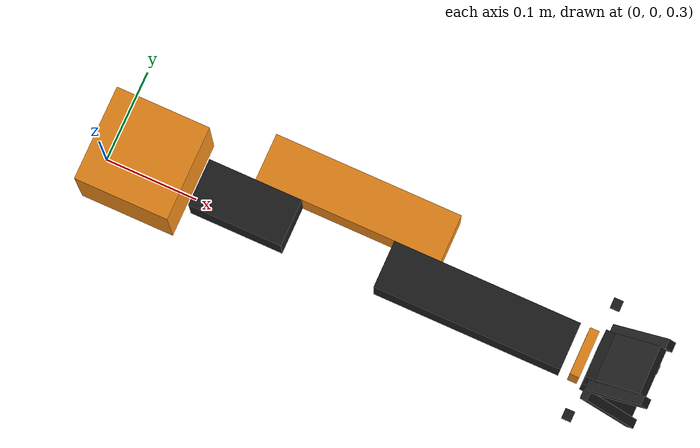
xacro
<?xml version="1.0"?>

<robot name="my_robo" xmlns:xacro="http://www.ros.org/wiki/xacro">

  <xacro:property name="PI" value="3.1415926535"/>
  <xacro:property name="mass1" value="0.05"/>
  <xacro:property name="mass2" value="0.05"/>
  <xacro:property name="mass3" value="0.05"/>
  <xacro:property name="mass4" value="0.02"/>
  <xacro:property name="mass5" value="0.02"/>

  <xacro:property name="width1" value="0.1"/>
  <xacro:property name="width2" value="0.1"/>
  <xacro:property name="width3" value="0.2"/>
  <xacro:property name="width4" value="0.2"/>
  <xacro:property name="width5" value="0.01"/>
  <xacro:property name="width6" value="0.01"/>
  <xacro:property name="width7" value="0.01"/>

  <xacro:property name="ha" value="0.08"/>

  <xacro:property name="size_cam" value="0.01"/>
  <xacro:property name="offset_cam" value="0.03"/>

  <xacro:property name="low" value="-1.57"/>
  <xacro:property name="up" value="1.57"/>
  <xacro:property name="eff" value="10.0"/>
  <xacro:property name="vel" value="5.0"/>

  <xacro:property name="sizeX" value="0.05"/>
  <xacro:property name="sizeY" value="0.05"/>
  <xacro:property name="sizeXg" value="0.05"/>
  <xacro:property name="sizeYg" value="0.05"/>

  <xacro:property name="offsetX" value="0.01"/>
  <xacro:property name="offsetY" value="0.05"/>

  <xacro:include filename="$(find my_robo_d)/urdf/my_robo.gazebo"/> i
  <xacro:include filename="$(find my_robo_d)/urdf/materials.xacro" />

  <link name="world"/>
  <joint name="fixed" type="fixed">
    <origin xyz="0 0 0.4" rpy="0 0 0"/>
    <parent link="world"/>
    <child link="link1"/>
  </joint>

  <link name="link1">
    <collision>
      <origin xyz="${width1/2} 0 0" rpy="0 0 0"/>
      <geometry>
        <box size="${width1/2} ${sizeX/2} ${sizeY/2}"/>
      </geometry>
    </collision>
    <visual>
      <origin xyz="${width1/2} 0 0" rpy="0 0 0"/>
      <geometry>
        <box size="${width1} ${sizeX*2} ${sizeY*2}"/>
      </geometry>
      <material name="orange"/>
    </visual>

    <inertial>
      <origin xyz="${width1/2} 0 0" rpy="0 0 0"/>
      <mass value="${mass1}"/>
      <inertia
        ixx="${mass1 / 12.0 * (width1*width1 + sizeY*sizeY)}" ixy="0.0" ixz="0.0"
        iyy="${mass1 / 12.0 * (sizeY*sizeY + sizeX * sizeX)}" iyz="0.0"
        izz="${mass1 / 12.0 * (sizeX * sizeX + width1 * width1)}" />
    </inertial>
  </link>

  <joint name="joint1" type="revolute">
    <origin xyz="${width1+offsetX} 0 0" rpy="0 0 0"/>
    <parent link="link1"/>
    <child link="link2"/>
    <axis xyz ="1 0 0"/>
    <dynamics damping="0.7"/>
    <limit lower = "${low}" upper = "${up}" effort="${eff}" velocity="${vel}"/>
  </joint>

  <link name="link2">
    <collision>
      <origin xyz="${width2/2} 0 0" rpy="0 0 0"/>
      <geometry>
        <box size="${width2/2} ${sizeX} ${sizeY}"/>
      </geometry>
    </collision>
    <visual>
      <origin xyz="${width2/2} 0 0" rpy="0 0 0"/>
      <geometry>
        <box size="${width2} ${sizeX} ${sizeY}"/>
      </geometry>
      <material name="black"/>
    </visual>

    <inertial>
      <origin xyz="${width2/2} 0 0" rpy="0 0 0"/>
      <mass value="${mass2}"/>
      <inertia
        ixx="${mass2 / 12.0 * (width2*width2 + sizeY*sizeY)}" ixy="0.0" ixz="0.0"
        iyy="${mass2 / 12.0 * (sizeY*sizeY + sizeX * sizeX)}" iyz="0.0"
        izz="${mass2 / 12.0 * (sizeX * sizeX + width2 * width2)}" />
    </inertial>

  </link>

  <joint name="joint2" type="revolute">
    <origin xyz="${width2-offsetY} ${offsetY} 0" rpy="0 0 0"/>
    <parent link="link2"/>
    <child link="link3"/>
    <axis xyz ="0 1 0"/>
    <dynamics damping="0.7"/>
    <limit lower = "${low}" upper = "${up}" effort="${eff}" velocity="${vel}"/>
  </joint>

  <link name="link3">
    <collision>
      <origin xyz="${width3/2} 0 0" rpy="0 0 0"/>
      <geometry>
        <box size="${width3/2} ${sizeX} ${sizeY}"/>
      </geometry>
    </collision>
    <visual>
      <origin xyz="${width3/2} 0 0" rpy="0 0 0"/>
      <geometry>
        <box size="${width3} ${sizeX} ${sizeY}"/>
      </geometry>
      <material name="orange"/>
    </visual>

    <inertial>
      <origin xyz="${width3/2} 0 0" rpy="0 0 0"/>
      <mass value="${mass3}"/>
      <inertia
        ixx="${mass3 / 12.0 * (width3*width3 + sizeY*sizeY)}" ixy="0.0" ixz="0.0"
        iyy="${mass3 / 12.0 * (sizeY*sizeY + sizeX * sizeX)}" iyz="0.0"
        izz="${mass3 / 12.0 * (sizeX * sizeX + width3 * width3)}" />
    </inertial>

  </link>

  <joint name="joint3" type="revolute">
    <origin xyz="${width3-offsetY} ${-offsetY} 0" rpy="0 0 0"/>
    <parent link="link3"/>
    <child link="link4"/>
    <axis xyz ="0 1 0"/>
    <dynamics damping="0.7"/>
    <limit lower = "${low}" upper = "${up}" effort="${eff}" velocity="${vel}"/>
  </joint>

  <link name="link4">
    <collision>
      <origin xyz="${width4/2} 0 0" rpy="0 0 0"/>
      <geometry>
        <box size="${width4/2} ${sizeX} ${sizeY}"/>
      </geometry>
    </collision>
    <visual>
      <origin xyz="${width4/2} 0 0" rpy="0 0 0"/>
      <geometry>
        <box size="${width4} ${sizeX} ${sizeY}"/>
      </geometry>
      <material name="black"/>
    </visual>

    <inertial>
      <origin xyz="${width4/2} 0 0" rpy="0 0 0"/>
      <mass value="${mass4}"/>
      <inertia
        ixx="${mass4 / 12.0 * (width4*width4 + sizeY*sizeY)}" ixy="0.0" ixz="0.0"
        iyy="${mass4 / 12.0 * (sizeY*sizeY + sizeX * sizeX)}" iyz="0.0"
        izz="${mass4 / 12.0 * (sizeX * sizeX + width4 * width4)}" />
    </inertial>

  </link>

  <joint name="joint4" type="revolute">
    <origin xyz="${width4+offsetX} 0 0" rpy="0 0 0"/>
    <parent link="link4"/>
    <child link="link5"/>
    <axis xyz ="1 0 0"/>
    <limit lower = "${low}" upper = "${up}" effort="${eff}" velocity="${vel}"/>
    <dynamics damping="0.7"/>
  </joint>

  <link name="link5">
    <collision>
      <origin xyz="${width5/2} 0 0" rpy="0 0 0"/>
      <geometry>
        <box size="${width5/2} ${sizeX} ${sizeY}"/>
      </geometry>
    </collision>
    <visual>
      <origin xyz="${width5/2} 0 0" rpy="0 0 0"/>
      <geometry>
        <box size="${width5} ${sizeX} ${sizeY}"/>
      </geometry>
      <material name="orange"/>
    </visual>

    <inertial>
      <origin xyz="${width5/2} 0 0" rpy="0 0 0"/>
      <mass value="${mass5}"/>
      <inertia
        ixx="${mass5 / 12.0 * (width5*width5 + sizeY*sizeY)}" ixy="0.0" ixz="0.0"
        iyy="${mass5 / 12.0 * (sizeY*sizeY + sizeX * sizeX)}" iyz="0.0"
        izz="${mass5 / 12.0 * (sizeX * sizeX + width5 * width5)}" />
    </inertial>

  </link>

<!--up_grip-->
  <joint name="joint5" type="revolute">
    <origin xyz="${width5} 0 0" rpy="0 0 0"/>
    <parent link="link5"/>
    <child link="link6"/>
    <limit lower = "${low}" upper = "${up}" effort="${eff}" velocity="${vel}"/>
    <dynamics damping="0.7"/>
    <axis xyz="0 1 0"/>
  </joint>

  <link name="link6">
    <collision>
      <origin xyz="${width6} 0 0.03" rpy="0 0 0"/>
      <geometry>
        <box size="${width6} ${sizeXg/2} ${sizeYg/2}"/>
      </geometry>
    </collision>
    <visual>
      <origin xyz="${width6} 0 0.03" rpy="0 0 0"/>
      <geometry>
        <box size="${width6} ${sizeXg} ${sizeYg}"/>
      </geometry>
      <material name="black"/>
    </visual>

    <inertial>
      <origin xyz="${width6/2} 0 0.03" rpy="0 0 0"/>
      <mass value="${mass5}"/>
      <inertia
        ixx="${mass5 / 12.0 * (width6*width6 + sizeY*sizeY)}" ixy="0.0" ixz="0.0"
        iyy="${mass5 / 12.0 * (sizeY*sizeY + sizeX * sizeX)}" iyz="0.0"
        izz="${mass5 / 12.0 * (sizeX * sizeX + width6 * width6)}" />
    </inertial>

  </link>

<!-- up grip2-->
  <joint name="joint7" type="fixed">
    <origin xyz="${width5} 0 0" rpy="0 0 0"/>
    <parent link="link6"/>
    <child link="link8"/>
  </joint>

  <link name="link8">
    <collision>
      <origin xyz="0.035 0 0.075" rpy="0 -0.75 0"/>
      <geometry>
        <box size="0.06 ${sizeXg} 0.01"/>
      </geometry>
    </collision>
    <visual>
      <origin xyz="0.03 0 0.075" rpy="0 -0.75 0"/>
      <geometry>
        <box size="0.06 ${sizeXg} 0.01"/>
      </geometry>
      <material name="black"/>
    </visual>

    <inertial>
      <origin xyz="${width6/2} 0 0.075" rpy="0 -0.75 0"/>
      <mass value="${mass5}"/>
      <inertia
        ixx="${mass5 / 12.0 * (width6*width6 + sizeY*sizeY)}" ixy="0.0" ixz="0.0"
        iyy="${mass5 / 12.0 * (sizeY*sizeY + sizeX * sizeX)}" iyz="0.0"
        izz="${mass5 / 12.0 * (sizeX * sizeX + width6 * width6)}" />
    </inertial>

  </link>

<!-- up grip3-->
  <joint name="joint9" type="fixed">
    <origin xyz="0 0 0" rpy="0 0 0"/>
    <parent link="link8"/>
    <child link="link10"/>
  </joint>

  <link name="link10">
    <collision>
      <origin xyz="0.035 0.03 0.065" rpy="0 0.75 0"/>
      <geometry>
        <box size="0.01 0.01 ${ha/2}"/>
      </geometry>
    </collision>
    <visual>
      <origin xyz="0.03 0.03 0.065" rpy="0 0.75 0"/>
      <geometry>
        <box size="0.01 0.01 ${ha}"/>
      </geometry>
      <material name="black"/>
    </visual>

    <inertial>
      <origin xyz="0.03 0.03 0.065" rpy="0 0.75 0"/>
      <mass value="${mass5}"/>
      <inertia
        ixx="${mass5 / 12.0 * (width6*width6 + sizeY*sizeY)}" ixy="0.0" ixz="0.0"
        iyy="${mass5 / 12.0 * (sizeY*sizeY + sizeX * sizeX)}" iyz="0.0"
        izz="${mass5 / 12.0 * (sizeX * sizeX + width6 * width6)}" />
    </inertial>

  </link>

<!-- up grip4-->
  <joint name="joint10" type="fixed">
    <origin xyz="0 0 0" rpy="0 0 0"/>
    <parent link="link8"/>
    <child link="link11"/>
  </joint>

  <link name="link11">
    <collision>
      <origin xyz="0.035 -0.03 0.065" rpy="0 0.75 0"/>
      <geometry>
        <box size="0.01 0.01 ${ha/2}"/>
      </geometry>
    </collision>
    <visual>
      <origin xyz="0.03 -0.03 0.065" rpy="0 0.75 0"/>
      <geometry>
        <box size="0.01 0.01 ${ha}"/>
      </geometry>
      <material name="black"/>
    </visual>

    <inertial>
      <origin xyz="0.03 -0.03 0.065" rpy="0 0.75 0"/>
      <mass value="${mass5}"/>
      <inertia
        ixx="${mass5 / 12.0 * (width6*width6 + sizeY*sizeY)}" ixy="0.0" ixz="0.0"
        iyy="${mass5 / 12.0 * (sizeY*sizeY + sizeX * sizeX)}" iyz="0.0"
        izz="${mass5 / 12.0 * (sizeX * sizeX + width6 * width6)}" />
    </inertial>

  </link>

<!--down grip-->
  <joint name="joint6" type="revolute">
    <origin xyz="${width5} 0 0" rpy="0 0 0"/>
    <parent link="link5"/>
    <child link="link7"/>
    <limit lower = "${low}" upper = "${up}" effort="${eff}" velocity="${vel}"/>
    <dynamics damping="0.7"/>
    <axis xyz="0 -1 0"/>
  </joint>

  <link name="link7">
    <collision>
      <origin xyz="${width6} 0 -0.03" rpy="0 0 0"/>
      <geometry>
        <box size="${width6} ${sizeXg/2} ${sizeYg/2}"/>
      </geometry>
    </collision>
    <visual>
      <origin xyz="${width6} 0 -0.03" rpy="0 0 0"/>
      <geometry>
        <box size="${width6} ${sizeXg} ${sizeYg}"/>
      </geometry>
      <material name="black"/>
    </visual>

    <inertial>
      <origin xyz="${width6/2} 0 -0.03" rpy="0 0 0"/>
      <mass value="${mass5}"/>
      <inertia
        ixx="${mass5 / 12.0 * (width6*width6 + sizeY*sizeY)}" ixy="0.0" ixz="0.0"
        iyy="${mass5 / 12.0 * (sizeY*sizeY + sizeX * sizeX)}" iyz="0.0"
        izz="${mass5 / 12.0 * (sizeX * sizeX + width6 * width6)}" />
    </inertial>

  </link>

<!--down grip2-->
  <joint name="joint8" type="fixed">
    <origin xyz="${width5} 0 0" rpy="0 0 0"/>
    <parent link="link7"/>
    <child link="link9"/>
  </joint>

  <link name="link9">
    <collision>
      <origin xyz="0.035 0 -0.075" rpy="0 0.75 0"/>
      <geometry>
        <box size="0.06 ${sizeXg} 0.01"/>
      </geometry>
    </collision>
    <visual>
      <origin xyz="0.03 0 -0.075" rpy="0 0.75 0"/>
      <geometry>
        <box size="0.06 ${sizeXg} 0.01"/>
      </geometry>
      <material name="black"/>
    </visual>

    <inertial>
      <origin xyz="${width6/2} 0 -0.075" rpy="0 0.75 0"/>
      <mass value="${mass5}"/>
      <inertia
        ixx="${mass5 / 12.0 * (width6*width6 + sizeY*sizeY)}" ixy="0.0" ixz="0.0"
        iyy="${mass5 / 12.0 * (sizeY*sizeY + sizeX * sizeX)}" iyz="0.0"
        izz="${mass5 / 12.0 * (sizeX * sizeX + width6 * width6)}" />
    </inertial>

  </link>

<!-- down grip3-->
  <joint name="joint11" type="fixed">
    <origin xyz="0 0 0" rpy="0 0 0"/>
    <parent link="link9"/>
    <child link="link12"/>
  </joint>

  <link name="link12">
    <collision>
      <origin xyz="0.035 0.03 -0.065" rpy="0 -0.75 0"/>
      <geometry>
        <box size="0.01 0.01 ${ha/2}"/>
      </geometry>
    </collision>
    <visual>
      <origin xyz="0.03 0.03 -0.065" rpy="0 -0.75 0"/>
      <geometry>
        <box size="0.01 0.01 ${ha}"/>
      </geometry>
      <material name="black"/>
    </visual>

    <inertial>
      <origin xyz="0.03 0.03 -0.065" rpy="0 -0.75 0"/>
      <mass value="${mass5}"/>
      <inertia
        ixx="${mass5 / 12.0 * (width6*width6 + sizeY*sizeY)}" ixy="0.0" ixz="0.0"
        iyy="${mass5 / 12.0 * (sizeY*sizeY + sizeX * sizeX)}" iyz="0.0"
        izz="${mass5 / 12.0 * (sizeX * sizeX + width6 * width6)}" />
    </inertial>

  </link>

<!-- down grip4-->
  <joint name="joint12" type="fixed">
    <origin xyz="0 0 0" rpy="0 0 0"/>
    <parent link="link9"/>
    <child link="link13"/>
  </joint>

  <link name="link13">
    <collision>
      <origin xyz="0.03 -0.03 -0.065" rpy="0 -0.75 0"/>
      <geometry>
        <box size="0.01 0.01 ${ha/2}"/>
      </geometry>
    </collision>
    <visual>
      <origin xyz="0.03 -0.03 -0.065" rpy="0 -0.75 0"/>
      <geometry>
        <box size="0.01 0.01 ${ha}"/>
      </geometry>
      <material name="black"/>
    </visual>

    <inertial>
      <origin xyz="0.03 -0.03 -0.065" rpy="0 -0.75 0"/>
      <mass value="${mass5}"/>
      <inertia
        ixx="${mass5 / 12.0 * (width6*width6 + sizeY*sizeY)}" ixy="0.0" ixz="0.0"
        iyy="${mass5 / 12.0 * (sizeY*sizeY + sizeX * sizeX)}" iyz="0.0"
        izz="${mass5 / 12.0 * (sizeX * sizeX + width6 * width6)}" />
    </inertial>

  </link>

  <joint name="cam_joint1" type="fixed">
    <origin xyz ="${width5+size_cam/2} ${offset_cam} 0"/>
    <parent link="link5"/>
    <child link="link_cam1"/>
  </joint>

  <link name="link_cam1">
    <collision>
      <origin xyz="0 ${offset_cam} 0"/>
      <geometry>
        <box size ="${size_cam} ${size_cam} ${size_cam}"/>
      </geometry>
    </collision>
		<visual>
      <origin xyz="0 ${offset_cam} 0" rpy="0 0 0"/>
      <geometry>
        <box size = "${size_cam} ${size_cam} ${size_cam}"/>
      </geometry>
      <material name="black"/>
    </visual>
		<inertial>
      <mass value = "0.001"/>
      <origin xyz = "0 ${offset_cam} 0" rpy="0 0 0"/>
      <inertia ixx="0.0001" ixy = "0" ixz = "0"
								iyy= "0.0001" iyz="0"
								izz="0.0001"/>
    </inertial>
	</link>

  <joint name="cam_joint2" type="fixed">
    <origin xyz ="${width5+size_cam/2} ${-offset_cam} 0"/>
    <parent link="link5"/>
    <child link="link_cam2"/>
  </joint>

  <link name="link_cam2">
    <collision>
      <origin xyz="0 ${-offset_cam} 0"/>
      <geometry>
        <box size ="${size_cam} ${size_cam} ${size_cam}"/>
      </geometry>
    </collision>
		<visual>
      <origin xyz="0 ${-offset_cam} 0" rpy="0 0 0"/>
      <geometry>
        <box size = "${size_cam} ${size_cam} ${size_cam}"/>
      </geometry>
      <material name="black"/>
    </visual>
		<inertial>
      <mass value = "0.001"/>
      <origin xyz = "0 ${-offset_cam} 0" rpy="0 0 0"/>
      <inertia ixx="0.0001" ixy = "0" ixz = "0"
								iyy= "0.0001" iyz="0"
								izz="0.0001"/>
    </inertial>
	</link>

  <transmission name="tran1">
    <type>transmission_interface/SimpleTransmission</type>
    <joint name="joint1">
      <hardwareInterface>hardware_interface/VelocityJointInterface</hardwareInterface>
    </joint>
    <actuator name="motor1">
      <hardwareInterface>hardware_interface/VelocityJointInterface</hardwareInterface>
      <mechanicalReduction>1</mechanicalReduction>
    </actuator>
  </transmission>

  <transmission name="tran2">
    <type>transmission_interface/SimpleTransmission</type>
    <joint name="joint2">
      <hardwareInterface>hardware_interface/VelocityJointInterface</hardwareInterface>
    </joint>
    <actuator name="motor2">
      <hardwareInterface>hardware_interface/VelocityJointInterface</hardwareInterface>
      <mechanicalReduction>1</mechanicalReduction>
    </actuator>
  </transmission>

  <transmission name="tran3">
    <type>transmission_interface/SimpleTransmission</type>
    <joint name="joint3">
      <hardwareInterface>hardware_interface/VelocityJointInterface</hardwareInterface>
    </joint>
    <actuator name="motor3">
      <hardwareInterface>hardware_interface/VelocityJointInterface</hardwareInterface>
      <mechanicalReduction>1</mechanicalReduction>
    </actuator>
  </transmission>

  <transmission name="tran4">
    <type>transmission_interface/SimpleTransmission</type>
    <joint name="joint4">
      <hardwareInterface>hardware_interface/VelocityJointInterface</hardwareInterface>
    </joint>
    <actuator name="motor4">
      <hardwareInterface>hardware_interface/VelocityJointInterface</hardwareInterface>
      <mechanicalReduction>1</mechanicalReduction>
    </actuator>
  </transmission>

  <transmission name="tran5">
    <type>transmission_interface/SimpleTransmission</type>
    <joint name="joint5">
      <hardwareInterface>hardware_interface/VelocityJointInterface</hardwareInterface>
    </joint>
    <actuator name="motor5">
      <hardwareInterface>hardware_interface/VelocityJointInterface</hardwareInterface>
      <mechanicalReduction>1</mechanicalReduction>
    </actuator>
  </transmission>

  <transmission name="tran6">
    <type>transmission_interface/SimpleTransmission</type>
    <joint name="joint6">
      <hardwareInterface>hardware_interface/VelocityJointInterface</hardwareInterface>
    </joint>
    <actuator name="motor6">
      <hardwareInterface>hardware_interface/VelocityJointInterface</hardwareInterface>
      <mechanicalReduction>1</mechanicalReduction>
    </actuator>
  </transmission>

</robot>
